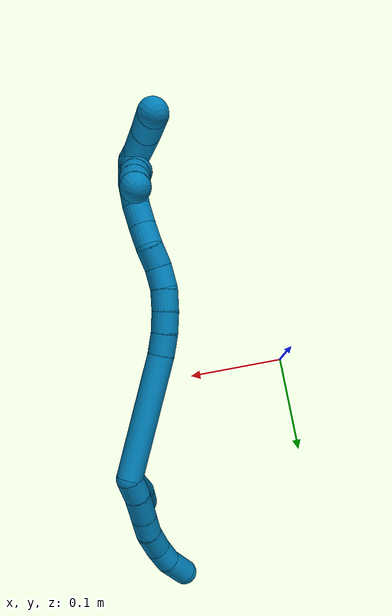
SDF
<sdf version="1.7">
 <world name="default">
  <model name="9">
   <static>0</static>
   <link name="9">
    <collision name="collision-cylinder-e_1_2_8">
     <pose>0.009522 -0.004324 -0.003803 2.29216 1.02687 1.78965</pose>
     <geometry><cylinder><radius>0.0125</radius><length>0.022256</length></cylinder></geometry>
     <surface>
      <friction><ode><mu>1.16</mu><mu2>1.16</mu2><slip1>0</slip1><slip2>0</slip2></ode></friction>
      <contact><ode><kp>1e+06</kp><kd>1</kd><max_vel>0</max_vel><min_depth>0.001</min_depth></ode></contact>
     </surface>
    </collision>
    <visual name="visual-cylinder-e_1_2_8">
     <pose>0.009522 -0.004324 -0.003803 2.29216 1.02687 1.78965</pose>
     <geometry><cylinder><radius>0.0125</radius><length>0.022256</length></cylinder></geometry>
     <material><ambient>0 0.490196 0.709804 1</ambient></material>
    </visual>
    <collision name="collision-cylinder-e_2_8_9">
     <pose>0.032115 -0.013404 -0.01123 2.22196 1.1418 1.82788</pose>
     <geometry><cylinder><radius>0.0125</radius><length>0.028745</length></cylinder></geometry>
     <surface>
      <friction><ode><mu>1.16</mu><mu2>1.16</mu2><slip1>0</slip1><slip2>0</slip2></ode></friction>
      <contact><ode><kp>1e+06</kp><kd>1</kd><max_vel>0</max_vel><min_depth>0.001</min_depth></ode></contact>
     </surface>
    </collision>
    <visual name="visual-cylinder-e_2_8_9">
     <pose>0.032115 -0.013404 -0.01123 2.22196 1.1418 1.82788</pose>
     <geometry><cylinder><radius>0.0125</radius><length>0.028745</length></cylinder></geometry>
     <material><ambient>0 0.490196 0.709804 1</ambient></material>
    </visual>
    <collision name="collision-cylinder-e_3_9_10">
     <pose>0.055099 -0.021586 -0.018016 2.31596 1.13115 1.9336</pose>
     <geometry><cylinder><radius>0.0125</radius><length>0.021913</length></cylinder></geometry>
     <surface>
      <friction><ode><mu>1.16</mu><mu2>1.16</mu2><slip1>0</slip1><slip2>0</slip2></ode></friction>
      <contact><ode><kp>1e+06</kp><kd>1</kd><max_vel>0</max_vel><min_depth>0.001</min_depth></ode></contact>
     </surface>
    </collision>
    <visual name="visual-cylinder-e_3_9_10">
     <pose>0.055099 -0.021586 -0.018016 2.31596 1.13115 1.9336</pose>
     <geometry><cylinder><radius>0.0125</radius><length>0.021913</length></cylinder></geometry>
     <material><ambient>0 0.490196 0.709804 1</ambient></material>
    </visual>
    <collision name="collision-cylinder-e_4_10_11">
     <pose>0.076264 -0.031543 -0.024473 2.03811 0.994356 1.44515</pose>
     <geometry><cylinder><radius>0.0125</radius><length>0.026838</length></cylinder></geometry>
     <surface>
      <friction><ode><mu>1.16</mu><mu2>1.16</mu2><slip1>0</slip1><slip2>0</slip2></ode></friction>
      <contact><ode><kp>1e+06</kp><kd>1</kd><max_vel>0</max_vel><min_depth>0.001</min_depth></ode></contact>
     </surface>
    </collision>
    <visual name="visual-cylinder-e_4_10_11">
     <pose>0.076264 -0.031543 -0.024473 2.03811 0.994356 1.44515</pose>
     <geometry><cylinder><radius>0.0125</radius><length>0.026838</length></cylinder></geometry>
     <material><ambient>0 0.490196 0.709804 1</ambient></material>
    </visual>
    <collision name="collision-cylinder-e_5_11_12">
     <pose>0.095278 -0.043693 -0.032146 2.23268 0.82827 1.46529</pose>
     <geometry><cylinder><radius>0.0125</radius><length>0.021073</length></cylinder></geometry>
     <surface>
      <friction><ode><mu>1.16</mu><mu2>1.16</mu2><slip1>0</slip1><slip2>0</slip2></ode></friction>
      <contact><ode><kp>1e+06</kp><kd>1</kd><max_vel>0</max_vel><min_depth>0.001</min_depth></ode></contact>
     </surface>
    </collision>
    <visual name="visual-cylinder-e_5_11_12">
     <pose>0.095278 -0.043693 -0.032146 2.23268 0.82827 1.46529</pose>
     <geometry><cylinder><radius>0.0125</radius><length>0.021073</length></cylinder></geometry>
     <material><ambient>0 0.490196 0.709804 1</ambient></material>
    </visual>
    <collision name="collision-cylinder-e_6_12_6">
     <pose>0.112266 -0.059698 -0.040978 1.97586 0.684671 0.99111</pose>
     <geometry><cylinder><radius>0.0125</radius><length>0.029174</length></cylinder></geometry>
     <surface>
      <friction><ode><mu>1.16</mu><mu2>1.16</mu2><slip1>0</slip1><slip2>0</slip2></ode></friction>
      <contact><ode><kp>1e+06</kp><kd>1</kd><max_vel>0</max_vel><min_depth>0.001</min_depth></ode></contact>
     </surface>
    </collision>
    <visual name="visual-cylinder-e_6_12_6">
     <pose>0.112266 -0.059698 -0.040978 1.97586 0.684671 0.99111</pose>
     <geometry><cylinder><radius>0.0125</radius><length>0.029174</length></cylinder></geometry>
     <material><ambient>0 0.490196 0.709804 1</ambient></material>
    </visual>
    <collision name="collision-cylinder-e_1_2_13">
     <pose>0.025386 -0.018259 0.009767 1.07962 0.886573 0.554333</pose>
     <geometry><cylinder><radius>0.0125</radius><length>0.065521</length></cylinder></geometry>
     <surface>
      <friction><ode><mu>1.16</mu><mu2>1.16</mu2><slip1>0</slip1><slip2>0</slip2></ode></friction>
      <contact><ode><kp>1e+06</kp><kd>1</kd><max_vel>0</max_vel><min_depth>0.001</min_depth></ode></contact>
     </surface>
    </collision>
    <visual name="visual-cylinder-e_1_2_13">
     <pose>0.025386 -0.018259 0.009767 1.07962 0.886573 0.554333</pose>
     <geometry><cylinder><radius>0.0125</radius><length>0.065521</length></cylinder></geometry>
     <material><ambient>0 0.490196 0.709804 1</ambient></material>
    </visual>
    <collision name="collision-cylinder-e_2_13_5">
     <pose>0.065797 -0.044237 0.022982 1.15067 1.05822 0.724909</pose>
     <geometry><cylinder><radius>0.0125</radius><length>0.034479</length></cylinder></geometry>
     <surface>
      <friction><ode><mu>1.16</mu><mu2>1.16</mu2><slip1>0</slip1><slip2>0</slip2></ode></friction>
      <contact><ode><kp>1e+06</kp><kd>1</kd><max_vel>0</max_vel><min_depth>0.001</min_depth></ode></contact>
     </surface>
    </collision>
    <visual name="visual-cylinder-e_2_13_5">
     <pose>0.065797 -0.044237 0.022982 1.15067 1.05822 0.724909</pose>
     <geometry><cylinder><radius>0.0125</radius><length>0.034479</length></cylinder></geometry>
     <material><ambient>0 0.490196 0.709804 1</ambient></material>
    </visual>
    <collision name="collision-cylinder-e_1_2_14">
     <pose>-0.049351 -0.019671 0.026308 0.642042 -0.983514 -0.352533</pose>
     <geometry><cylinder><radius>0.0125</radius><length>0.118569</length></cylinder></geometry>
     <surface>
      <friction><ode><mu>1.16</mu><mu2>1.16</mu2><slip1>0</slip1><slip2>0</slip2></ode></friction>
      <contact><ode><kp>1e+06</kp><kd>1</kd><max_vel>0</max_vel><min_depth>0.001</min_depth></ode></contact>
     </surface>
    </collision>
    <visual name="visual-cylinder-e_1_2_14">
     <pose>-0.049351 -0.019671 0.026308 0.642042 -0.983514 -0.352533</pose>
     <geometry><cylinder><radius>0.0125</radius><length>0.118569</length></cylinder></geometry>
     <material><ambient>0 0.490196 0.709804 1</ambient></material>
    </visual>
    <collision name="collision-cylinder-e_2_14_15">
     <pose>-0.107719 -0.041496 0.057117 0.44637 -1.06546 -0.266053</pose>
     <geometry><cylinder><radius>0.0125</radius><length>0.020609</length></cylinder></geometry>
     <surface>
      <friction><ode><mu>1.16</mu><mu2>1.16</mu2><slip1>0</slip1><slip2>0</slip2></ode></friction>
      <contact><ode><kp>1e+06</kp><kd>1</kd><max_vel>0</max_vel><min_depth>0.001</min_depth></ode></contact>
     </surface>
    </collision>
    <visual name="visual-cylinder-e_2_14_15">
     <pose>-0.107719 -0.041496 0.057117 0.44637 -1.06546 -0.266053</pose>
     <geometry><cylinder><radius>0.0125</radius><length>0.020609</length></cylinder></geometry>
     <material><ambient>0 0.490196 0.709804 1</ambient></material>
    </visual>
    <collision name="collision-cylinder-e_3_15_16">
     <pose>-0.125385 -0.044851 0.066781 0.228534 -1.0208 -0.128337</pose>
     <geometry><cylinder><radius>0.0125</radius><length>0.020289</length></cylinder></geometry>
     <surface>
      <friction><ode><mu>1.16</mu><mu2>1.16</mu2><slip1>0</slip1><slip2>0</slip2></ode></friction>
      <contact><ode><kp>1e+06</kp><kd>1</kd><max_vel>0</max_vel><min_depth>0.001</min_depth></ode></contact>
     </surface>
    </collision>
    <visual name="visual-cylinder-e_3_15_16">
     <pose>-0.125385 -0.044851 0.066781 0.228534 -1.0208 -0.128337</pose>
     <geometry><cylinder><radius>0.0125</radius><length>0.020289</length></cylinder></geometry>
     <material><ambient>0 0.490196 0.709804 1</ambient></material>
    </visual>
    <collision name="collision-cylinder-e_4_16_17">
     <pose>-0.142258 -0.046613 0.077742 0.096399 -0.954659 -0.049888</pose>
     <geometry><cylinder><radius>0.0125</radius><length>0.020156</length></cylinder></geometry>
     <surface>
      <friction><ode><mu>1.16</mu><mu2>1.16</mu2><slip1>0</slip1><slip2>0</slip2></ode></friction>
      <contact><ode><kp>1e+06</kp><kd>1</kd><max_vel>0</max_vel><min_depth>0.001</min_depth></ode></contact>
     </surface>
    </collision>
    <visual name="visual-cylinder-e_4_16_17">
     <pose>-0.142258 -0.046613 0.077742 0.096399 -0.954659 -0.049888</pose>
     <geometry><cylinder><radius>0.0125</radius><length>0.020156</length></cylinder></geometry>
     <material><ambient>0 0.490196 0.709804 1</ambient></material>
    </visual>
    <collision name="collision-cylinder-e_5_17_18">
     <pose>-0.157622 -0.046318 0.090681 -0.119176 -0.781616 0.049149</pose>
     <geometry><cylinder><radius>0.0125</radius><length>0.020269</length></cylinder></geometry>
     <surface>
      <friction><ode><mu>1.16</mu><mu2>1.16</mu2><slip1>0</slip1><slip2>0</slip2></ode></friction>
      <contact><ode><kp>1e+06</kp><kd>1</kd><max_vel>0</max_vel><min_depth>0.001</min_depth></ode></contact>
     </surface>
    </collision>
    <visual name="visual-cylinder-e_5_17_18">
     <pose>-0.157622 -0.046318 0.090681 -0.119176 -0.781616 0.049149</pose>
     <geometry><cylinder><radius>0.0125</radius><length>0.020269</length></cylinder></geometry>
     <material><ambient>0 0.490196 0.709804 1</ambient></material>
    </visual>
    <collision name="collision-cylinder-e_6_18_19">
     <pose>-0.17209 -0.04236 0.10396 -0.468111 -0.817269 0.205752</pose>
     <geometry><cylinder><radius>0.0125</radius><length>0.020099</length></cylinder></geometry>
     <surface>
      <friction><ode><mu>1.16</mu><mu2>1.16</mu2><slip1>0</slip1><slip2>0</slip2></ode></friction>
      <contact><ode><kp>1e+06</kp><kd>1</kd><max_vel>0</max_vel><min_depth>0.001</min_depth></ode></contact>
     </surface>
    </collision>
    <visual name="visual-cylinder-e_6_18_19">
     <pose>-0.17209 -0.04236 0.10396 -0.468111 -0.817269 0.205752</pose>
     <geometry><cylinder><radius>0.0125</radius><length>0.020099</length></cylinder></geometry>
     <material><ambient>0 0.490196 0.709804 1</ambient></material>
    </visual>
    <collision name="collision-cylinder-e_7_19_20">
     <pose>-0.185354 -0.038614 0.118122 -0.080093 -0.635273 0.026345</pose>
     <geometry><cylinder><radius>0.0125</radius><length>0.020006</length></cylinder></geometry>
     <surface>
      <friction><ode><mu>1.16</mu><mu2>1.16</mu2><slip1>0</slip1><slip2>0</slip2></ode></friction>
      <contact><ode><kp>1e+06</kp><kd>1</kd><max_vel>0</max_vel><min_depth>0.001</min_depth></ode></contact>
     </surface>
    </collision>
    <visual name="visual-cylinder-e_7_19_20">
     <pose>-0.185354 -0.038614 0.118122 -0.080093 -0.635273 0.026345</pose>
     <geometry><cylinder><radius>0.0125</radius><length>0.020006</length></cylinder></geometry>
     <material><ambient>0 0.490196 0.709804 1</ambient></material>
    </visual>
    <collision name="collision-cylinder-e_8_20_21">
     <pose>-0.1978 -0.037254 0.133707 -0.094363 -0.708745 0.034936</pose>
     <geometry><cylinder><radius>0.0125</radius><length>0.020002</length></cylinder></geometry>
     <surface>
      <friction><ode><mu>1.16</mu><mu2>1.16</mu2><slip1>0</slip1><slip2>0</slip2></ode></friction>
      <contact><ode><kp>1e+06</kp><kd>1</kd><max_vel>0</max_vel><min_depth>0.001</min_depth></ode></contact>
     </surface>
    </collision>
    <visual name="visual-cylinder-e_8_20_21">
     <pose>-0.1978 -0.037254 0.133707 -0.094363 -0.708745 0.034936</pose>
     <geometry><cylinder><radius>0.0125</radius><length>0.020002</length></cylinder></geometry>
     <material><ambient>0 0.490196 0.709804 1</ambient></material>
    </visual>
    <collision name="collision-cylinder-e_9_21_22">
     <pose>-0.212079 -0.035955 0.147534 -0.092881 -0.889851 0.044311</pose>
     <geometry><cylinder><radius>0.0125</radius><length>0.02</length></cylinder></geometry>
     <surface>
      <friction><ode><mu>1.16</mu><mu2>1.16</mu2><slip1>0</slip1><slip2>0</slip2></ode></friction>
      <contact><ode><kp>1e+06</kp><kd>1</kd><max_vel>0</max_vel><min_depth>0.001</min_depth></ode></contact>
     </surface>
    </collision>
    <visual name="visual-cylinder-e_9_21_22">
     <pose>-0.212079 -0.035955 0.147534 -0.092881 -0.889851 0.044311</pose>
     <geometry><cylinder><radius>0.0125</radius><length>0.02</length></cylinder></geometry>
     <material><ambient>0 0.490196 0.709804 1</ambient></material>
    </visual>
    <collision name="collision-cylinder-e_10_22_1">
     <pose>-0.227379 -0.037163 0.160133 0.275867 -0.852641 -0.125926</pose>
     <geometry><cylinder><radius>0.0125</radius><length>0.02</length></cylinder></geometry>
     <surface>
      <friction><ode><mu>1.16</mu><mu2>1.16</mu2><slip1>0</slip1><slip2>0</slip2></ode></friction>
      <contact><ode><kp>1e+06</kp><kd>1</kd><max_vel>0</max_vel><min_depth>0.001</min_depth></ode></contact>
     </surface>
    </collision>
    <visual name="visual-cylinder-e_10_22_1">
     <pose>-0.227379 -0.037163 0.160133 0.275867 -0.852641 -0.125926</pose>
     <geometry><cylinder><radius>0.0125</radius><length>0.02</length></cylinder></geometry>
     <material><ambient>0 0.490196 0.709804 1</ambient></material>
    </visual>
    <collision name="collision-cylinder-e_1_1_23">
     <pose>-0.23554 -0.034828 0.157378 -2.71519 -0.063063 0.289357</pose>
     <geometry><cylinder><radius>0.0125</radius><length>0.02</length></cylinder></geometry>
     <surface>
      <friction><ode><mu>1.16</mu><mu2>1.16</mu2><slip1>0</slip1><slip2>0</slip2></ode></friction>
      <contact><ode><kp>1e+06</kp><kd>1</kd><max_vel>0</max_vel><min_depth>0.001</min_depth></ode></contact>
     </surface>
    </collision>
    <visual name="visual-cylinder-e_1_1_23">
     <pose>-0.23554 -0.034828 0.157378 -2.71519 -0.063063 0.289357</pose>
     <geometry><cylinder><radius>0.0125</radius><length>0.02</length></cylinder></geometry>
     <material><ambient>0 0.490196 0.709804 1</ambient></material>
    </visual>
    <collision name="collision-cylinder-e_2_23_24">
     <pose>-0.23887 -0.027105 0.139359 -2.75888 -0.273437 1.23504</pose>
     <geometry><cylinder><radius>0.0125</radius><length>0.02</length></cylinder></geometry>
     <surface>
      <friction><ode><mu>1.16</mu><mu2>1.16</mu2><slip1>0</slip1><slip2>0</slip2></ode></friction>
      <contact><ode><kp>1e+06</kp><kd>1</kd><max_vel>0</max_vel><min_depth>0.001</min_depth></ode></contact>
     </surface>
    </collision>
    <visual name="visual-cylinder-e_2_23_24">
     <pose>-0.23887 -0.027105 0.139359 -2.75888 -0.273437 1.23504</pose>
     <geometry><cylinder><radius>0.0125</radius><length>0.02</length></cylinder></geometry>
     <material><ambient>0 0.490196 0.709804 1</ambient></material>
    </visual>
    <collision name="collision-cylinder-e_3_24_25">
     <pose>-0.243853 -0.017398 0.122848 -2.46309 -0.230228 0.633246</pose>
     <geometry><cylinder><radius>0.0125</radius><length>0.02</length></cylinder></geometry>
     <surface>
      <friction><ode><mu>1.16</mu><mu2>1.16</mu2><slip1>0</slip1><slip2>0</slip2></ode></friction>
      <contact><ode><kp>1e+06</kp><kd>1</kd><max_vel>0</max_vel><min_depth>0.001</min_depth></ode></contact>
     </surface>
    </collision>
    <visual name="visual-cylinder-e_3_24_25">
     <pose>-0.243853 -0.017398 0.122848 -2.46309 -0.230228 0.633246</pose>
     <geometry><cylinder><radius>0.0125</radius><length>0.02</length></cylinder></geometry>
     <material><ambient>0 0.490196 0.709804 1</ambient></material>
    </visual>
    <collision name="collision-cylinder-e_4_25_26">
     <pose>-0.247544 -0.006094 0.106839 -2.58938 -0.141383 0.489781</pose>
     <geometry><cylinder><radius>0.0125</radius><length>0.02</length></cylinder></geometry>
     <surface>
      <friction><ode><mu>1.16</mu><mu2>1.16</mu2><slip1>0</slip1><slip2>0</slip2></ode></friction>
      <contact><ode><kp>1e+06</kp><kd>1</kd><max_vel>0</max_vel><min_depth>0.001</min_depth></ode></contact>
     </surface>
    </collision>
    <visual name="visual-cylinder-e_4_25_26">
     <pose>-0.247544 -0.006094 0.106839 -2.58938 -0.141383 0.489781</pose>
     <geometry><cylinder><radius>0.0125</radius><length>0.02</length></cylinder></geometry>
     <material><ambient>0 0.490196 0.709804 1</ambient></material>
    </visual>
    <collision name="collision-cylinder-e_5_26_4">
     <pose>-0.250031 0.003792 0.089646 -2.65001 -0.107972 0.424338</pose>
     <geometry><cylinder><radius>0.0125</radius><length>0.02</length></cylinder></geometry>
     <surface>
      <friction><ode><mu>1.16</mu><mu2>1.16</mu2><slip1>0</slip1><slip2>0</slip2></ode></friction>
      <contact><ode><kp>1e+06</kp><kd>1</kd><max_vel>0</max_vel><min_depth>0.001</min_depth></ode></contact>
     </surface>
    </collision>
    <visual name="visual-cylinder-e_5_26_4">
     <pose>-0.250031 0.003792 0.089646 -2.65001 -0.107972 0.424338</pose>
     <geometry><cylinder><radius>0.0125</radius><length>0.02</length></cylinder></geometry>
     <material><ambient>0 0.490196 0.709804 1</ambient></material>
    </visual>
    <collision name="collision-cylinder-e_1_1_27">
     <pose>-0.242304 -0.036525 0.159855 -2.78918 -0.809835 2.35413</pose>
     <geometry><cylinder><radius>0.0125</radius><length>0.020421</length></cylinder></geometry>
     <surface>
      <friction><ode><mu>1.16</mu><mu2>1.16</mu2><slip1>0</slip1><slip2>0</slip2></ode></friction>
      <contact><ode><kp>1e+06</kp><kd>1</kd><max_vel>0</max_vel><min_depth>0.001</min_depth></ode></contact>
     </surface>
    </collision>
    <visual name="visual-cylinder-e_1_1_27">
     <pose>-0.242304 -0.036525 0.159855 -2.78918 -0.809835 2.35413</pose>
     <geometry><cylinder><radius>0.0125</radius><length>0.020421</length></cylinder></geometry>
     <material><ambient>0 0.490196 0.709804 1</ambient></material>
    </visual>
    <collision name="collision-cylinder-e_2_27_28">
     <pose>-0.265232 -0.025591 0.137124 -2.65624 -0.705785 1.95802</pose>
     <geometry><cylinder><radius>0.0125</radius><length>0.047899</length></cylinder></geometry>
     <surface>
      <friction><ode><mu>1.16</mu><mu2>1.16</mu2><slip1>0</slip1><slip2>0</slip2></ode></friction>
      <contact><ode><kp>1e+06</kp><kd>1</kd><max_vel>0</max_vel><min_depth>0.001</min_depth></ode></contact>
     </surface>
    </collision>
    <visual name="visual-cylinder-e_2_27_28">
     <pose>-0.265232 -0.025591 0.137124 -2.65624 -0.705785 1.95802</pose>
     <geometry><cylinder><radius>0.0125</radius><length>0.047899</length></cylinder></geometry>
     <material><ambient>0 0.490196 0.709804 1</ambient></material>
    </visual>
    <collision name="collision-cylinder-e_3_28_3">
     <pose>-0.291413 -0.011433 0.110726 -2.63852 -0.737048 1.96725</pose>
     <geometry><cylinder><radius>0.0125</radius><length>0.03168</length></cylinder></geometry>
     <surface>
      <friction><ode><mu>1.16</mu><mu2>1.16</mu2><slip1>0</slip1><slip2>0</slip2></ode></friction>
      <contact><ode><kp>1e+06</kp><kd>1</kd><max_vel>0</max_vel><min_depth>0.001</min_depth></ode></contact>
     </surface>
    </collision>
    <visual name="visual-cylinder-e_3_28_3">
     <pose>-0.291413 -0.011433 0.110726 -2.63852 -0.737048 1.96725</pose>
     <geometry><cylinder><radius>0.0125</radius><length>0.03168</length></cylinder></geometry>
     <material><ambient>0 0.490196 0.709804 1</ambient></material>
    </visual>
    <collision name="collision-sphere-3">
     <pose>-0.302059 -0.005778 0.10045 0 -0 0</pose>
     <geometry><sphere><radius>0.0125</radius></sphere></geometry>
     <surface>
      <friction><ode><mu>1.16</mu><mu2>1.16</mu2><slip1>0</slip1><slip2>0</slip2></ode></friction>
      <contact><ode><kp>1e+06</kp><kd>1</kd><max_vel>0</max_vel><min_depth>0.001</min_depth></ode></contact>
     </surface>
    </collision>
    <visual name="visual-sphere-3">
     <pose>-0.302059 -0.005778 0.10045 0 -0 0</pose>
     <geometry><sphere><radius>0.0125</radius></sphere></geometry>
     <material><ambient>0 0.490196 0.709804 1</ambient></material>
    </visual>
    <collision name="collision-sphere-28">
     <pose>-0.280767 -0.017087 0.121001 0 -0 0</pose>
     <geometry><sphere><radius>0.0125</radius></sphere></geometry>
     <surface>
      <friction><ode><mu>1.16</mu><mu2>1.16</mu2><slip1>0</slip1><slip2>0</slip2></ode></friction>
      <contact><ode><kp>1e+06</kp><kd>1</kd><max_vel>0</max_vel><min_depth>0.001</min_depth></ode></contact>
     </surface>
    </collision>
    <visual name="visual-sphere-28">
     <pose>-0.280767 -0.017087 0.121001 0 -0 0</pose>
     <geometry><sphere><radius>0.0125</radius></sphere></geometry>
     <material><ambient>0 0.490196 0.709804 1</ambient></material>
    </visual>
    <collision name="collision-sphere-27">
     <pose>-0.249698 -0.034095 0.153247 0 -0 0</pose>
     <geometry><sphere><radius>0.0125</radius></sphere></geometry>
     <surface>
      <friction><ode><mu>1.16</mu><mu2>1.16</mu2><slip1>0</slip1><slip2>0</slip2></ode></friction>
      <contact><ode><kp>1e+06</kp><kd>1</kd><max_vel>0</max_vel><min_depth>0.001</min_depth></ode></contact>
     </surface>
    </collision>
    <visual name="visual-sphere-27">
     <pose>-0.249698 -0.034095 0.153247 0 -0 0</pose>
     <geometry><sphere><radius>0.0125</radius></sphere></geometry>
     <material><ambient>0 0.490196 0.709804 1</ambient></material>
    </visual>
    <collision name="collision-sphere-4">
     <pose>-0.251108 0.008485 0.080881 0 -0 0</pose>
     <geometry><sphere><radius>0.0125</radius></sphere></geometry>
     <surface>
      <friction><ode><mu>1.16</mu><mu2>1.16</mu2><slip1>0</slip1><slip2>0</slip2></ode></friction>
      <contact><ode><kp>1e+06</kp><kd>1</kd><max_vel>0</max_vel><min_depth>0.001</min_depth></ode></contact>
     </surface>
    </collision>
    <visual name="visual-sphere-4">
     <pose>-0.251108 0.008485 0.080881 0 -0 0</pose>
     <geometry><sphere><radius>0.0125</radius></sphere></geometry>
     <material><ambient>0 0.490196 0.709804 1</ambient></material>
    </visual>
    <collision name="collision-sphere-26">
     <pose>-0.248953 -0.000901 0.098411 0 -0 0</pose>
     <geometry><sphere><radius>0.0125</radius></sphere></geometry>
     <surface>
      <friction><ode><mu>1.16</mu><mu2>1.16</mu2><slip1>0</slip1><slip2>0</slip2></ode></friction>
      <contact><ode><kp>1e+06</kp><kd>1</kd><max_vel>0</max_vel><min_depth>0.001</min_depth></ode></contact>
     </surface>
    </collision>
    <visual name="visual-sphere-26">
     <pose>-0.248953 -0.000901 0.098411 0 -0 0</pose>
     <geometry><sphere><radius>0.0125</radius></sphere></geometry>
     <material><ambient>0 0.490196 0.709804 1</ambient></material>
    </visual>
    <collision name="collision-sphere-25">
     <pose>-0.246135 -0.011288 0.115268 0 -0 0</pose>
     <geometry><sphere><radius>0.0125</radius></sphere></geometry>
     <surface>
      <friction><ode><mu>1.16</mu><mu2>1.16</mu2><slip1>0</slip1><slip2>0</slip2></ode></friction>
      <contact><ode><kp>1e+06</kp><kd>1</kd><max_vel>0</max_vel><min_depth>0.001</min_depth></ode></contact>
     </surface>
    </collision>
    <visual name="visual-sphere-25">
     <pose>-0.246135 -0.011288 0.115268 0 -0 0</pose>
     <geometry><sphere><radius>0.0125</radius></sphere></geometry>
     <material><ambient>0 0.490196 0.709804 1</ambient></material>
    </visual>
    <collision name="collision-sphere-24">
     <pose>-0.241571 -0.023509 0.130427 0 -0 0</pose>
     <geometry><sphere><radius>0.0125</radius></sphere></geometry>
     <surface>
      <friction><ode><mu>1.16</mu><mu2>1.16</mu2><slip1>0</slip1><slip2>0</slip2></ode></friction>
      <contact><ode><kp>1e+06</kp><kd>1</kd><max_vel>0</max_vel><min_depth>0.001</min_depth></ode></contact>
     </surface>
    </collision>
    <visual name="visual-sphere-24">
     <pose>-0.241571 -0.023509 0.130427 0 -0 0</pose>
     <geometry><sphere><radius>0.0125</radius></sphere></geometry>
     <material><ambient>0 0.490196 0.709804 1</ambient></material>
    </visual>
    <collision name="collision-sphere-23">
     <pose>-0.23617 -0.0307 0.148291 0 -0 0</pose>
     <geometry><sphere><radius>0.0125</radius></sphere></geometry>
     <surface>
      <friction><ode><mu>1.16</mu><mu2>1.16</mu2><slip1>0</slip1><slip2>0</slip2></ode></friction>
      <contact><ode><kp>1e+06</kp><kd>1</kd><max_vel>0</max_vel><min_depth>0.001</min_depth></ode></contact>
     </surface>
    </collision>
    <visual name="visual-sphere-23">
     <pose>-0.23617 -0.0307 0.148291 0 -0 0</pose>
     <geometry><sphere><radius>0.0125</radius></sphere></geometry>
     <material><ambient>0 0.490196 0.709804 1</ambient></material>
    </visual>
    <collision name="collision-sphere-1">
     <pose>-0.234909 -0.038956 0.166464 0 -0 0</pose>
     <geometry><sphere><radius>0.0125</radius></sphere></geometry>
     <surface>
      <friction><ode><mu>1.16</mu><mu2>1.16</mu2><slip1>0</slip1><slip2>0</slip2></ode></friction>
      <contact><ode><kp>1e+06</kp><kd>1</kd><max_vel>0</max_vel><min_depth>0.001</min_depth></ode></contact>
     </surface>
    </collision>
    <visual name="visual-sphere-1">
     <pose>-0.234909 -0.038956 0.166464 0 -0 0</pose>
     <geometry><sphere><radius>0.0125</radius></sphere></geometry>
     <material><ambient>0 0.490196 0.709804 1</ambient></material>
    </visual>
    <collision name="collision-sphere-22">
     <pose>-0.219849 -0.035371 0.153802 0 -0 0</pose>
     <geometry><sphere><radius>0.0125</radius></sphere></geometry>
     <surface>
      <friction><ode><mu>1.16</mu><mu2>1.16</mu2><slip1>0</slip1><slip2>0</slip2></ode></friction>
      <contact><ode><kp>1e+06</kp><kd>1</kd><max_vel>0</max_vel><min_depth>0.001</min_depth></ode></contact>
     </surface>
    </collision>
    <visual name="visual-sphere-22">
     <pose>-0.219849 -0.035371 0.153802 0 -0 0</pose>
     <geometry><sphere><radius>0.0125</radius></sphere></geometry>
     <material><ambient>0 0.490196 0.709804 1</ambient></material>
    </visual>
    <collision name="collision-sphere-21">
     <pose>-0.204309 -0.036539 0.141265 0 -0 0</pose>
     <geometry><sphere><radius>0.0125</radius></sphere></geometry>
     <surface>
      <friction><ode><mu>1.16</mu><mu2>1.16</mu2><slip1>0</slip1><slip2>0</slip2></ode></friction>
      <contact><ode><kp>1e+06</kp><kd>1</kd><max_vel>0</max_vel><min_depth>0.001</min_depth></ode></contact>
     </surface>
    </collision>
    <visual name="visual-sphere-21">
     <pose>-0.204309 -0.036539 0.141265 0 -0 0</pose>
     <geometry><sphere><radius>0.0125</radius></sphere></geometry>
     <material><ambient>0 0.490196 0.709804 1</ambient></material>
    </visual>
    <collision name="collision-sphere-12">
     <pose>0.103041 -0.049313 -0.036525 0 -0 0</pose>
     <geometry><sphere><radius>0.0125</radius></sphere></geometry>
     <surface>
      <friction><ode><mu>1.16</mu><mu2>1.16</mu2><slip1>0</slip1><slip2>0</slip2></ode></friction>
      <contact><ode><kp>1e+06</kp><kd>1</kd><max_vel>0</max_vel><min_depth>0.001</min_depth></ode></contact>
     </surface>
    </collision>
    <visual name="visual-sphere-12">
     <pose>0.103041 -0.049313 -0.036525 0 -0 0</pose>
     <geometry><sphere><radius>0.0125</radius></sphere></geometry>
     <material><ambient>0 0.490196 0.709804 1</ambient></material>
    </visual>
    <collision name="collision-sphere-11">
     <pose>0.087515 -0.038073 -0.027767 0 -0 0</pose>
     <geometry><sphere><radius>0.0125</radius></sphere></geometry>
     <surface>
      <friction><ode><mu>1.16</mu><mu2>1.16</mu2><slip1>0</slip1><slip2>0</slip2></ode></friction>
      <contact><ode><kp>1e+06</kp><kd>1</kd><max_vel>0</max_vel><min_depth>0.001</min_depth></ode></contact>
     </surface>
    </collision>
    <visual name="visual-sphere-11">
     <pose>0.087515 -0.038073 -0.027767 0 -0 0</pose>
     <geometry><sphere><radius>0.0125</radius></sphere></geometry>
     <material><ambient>0 0.490196 0.709804 1</ambient></material>
    </visual>
    <collision name="collision-sphere-10">
     <pose>0.065014 -0.025014 -0.021178 0 -0 0</pose>
     <geometry><sphere><radius>0.0125</radius></sphere></geometry>
     <surface>
      <friction><ode><mu>1.16</mu><mu2>1.16</mu2><slip1>0</slip1><slip2>0</slip2></ode></friction>
      <contact><ode><kp>1e+06</kp><kd>1</kd><max_vel>0</max_vel><min_depth>0.001</min_depth></ode></contact>
     </surface>
    </collision>
    <visual name="visual-sphere-10">
     <pose>0.065014 -0.025014 -0.021178 0 -0 0</pose>
     <geometry><sphere><radius>0.0125</radius></sphere></geometry>
     <material><ambient>0 0.490196 0.709804 1</ambient></material>
    </visual>
    <collision name="collision-sphere-9">
     <pose>0.045185 -0.018159 -0.014853 0 -0 0</pose>
     <geometry><sphere><radius>0.0125</radius></sphere></geometry>
     <surface>
      <friction><ode><mu>1.16</mu><mu2>1.16</mu2><slip1>0</slip1><slip2>0</slip2></ode></friction>
      <contact><ode><kp>1e+06</kp><kd>1</kd><max_vel>0</max_vel><min_depth>0.001</min_depth></ode></contact>
     </surface>
    </collision>
    <visual name="visual-sphere-9">
     <pose>0.045185 -0.018159 -0.014853 0 -0 0</pose>
     <geometry><sphere><radius>0.0125</radius></sphere></geometry>
     <material><ambient>0 0.490196 0.709804 1</ambient></material>
    </visual>
    <collision name="collision-sphere-2">
     <geometry><sphere><radius>0.0125</radius></sphere></geometry>
     <surface>
      <friction><ode><mu>1.16</mu><mu2>1.16</mu2><slip1>0</slip1><slip2>0</slip2></ode></friction>
      <contact><ode><kp>1e+06</kp><kd>1</kd><max_vel>0</max_vel><min_depth>0.001</min_depth></ode></contact>
     </surface>
    </collision>
    <visual name="visual-sphere-2">
     <geometry><sphere><radius>0.0125</radius></sphere></geometry>
     <material><ambient>0 0.490196 0.709804 1</ambient></material>
    </visual>
    <collision name="collision-sphere-19">
     <pose>-0.179418 -0.039258 0.110096 0 -0 0</pose>
     <geometry><sphere><radius>0.0125</radius></sphere></geometry>
     <surface>
      <friction><ode><mu>1.16</mu><mu2>1.16</mu2><slip1>0</slip1><slip2>0</slip2></ode></friction>
      <contact><ode><kp>1e+06</kp><kd>1</kd><max_vel>0</max_vel><min_depth>0.001</min_depth></ode></contact>
     </surface>
    </collision>
    <visual name="visual-sphere-19">
     <pose>-0.179418 -0.039258 0.110096 0 -0 0</pose>
     <geometry><sphere><radius>0.0125</radius></sphere></geometry>
     <material><ambient>0 0.490196 0.709804 1</ambient></material>
    </visual>
    <collision name="collision-sphere-8">
     <pose>0.019044 -0.008649 -0.007606 0 -0 0</pose>
     <geometry><sphere><radius>0.0125</radius></sphere></geometry>
     <surface>
      <friction><ode><mu>1.16</mu><mu2>1.16</mu2><slip1>0</slip1><slip2>0</slip2></ode></friction>
      <contact><ode><kp>1e+06</kp><kd>1</kd><max_vel>0</max_vel><min_depth>0.001</min_depth></ode></contact>
     </surface>
    </collision>
    <visual name="visual-sphere-8">
     <pose>0.019044 -0.008649 -0.007606 0 -0 0</pose>
     <geometry><sphere><radius>0.0125</radius></sphere></geometry>
     <material><ambient>0 0.490196 0.709804 1</ambient></material>
    </visual>
    <collision name="collision-sphere-6">
     <pose>0.121491 -0.070083 -0.045431 0 -0 0</pose>
     <geometry><sphere><radius>0.0125</radius></sphere></geometry>
     <surface>
      <friction><ode><mu>1.16</mu><mu2>1.16</mu2><slip1>0</slip1><slip2>0</slip2></ode></friction>
      <contact><ode><kp>1e+06</kp><kd>1</kd><max_vel>0</max_vel><min_depth>0.001</min_depth></ode></contact>
     </surface>
    </collision>
    <visual name="visual-sphere-6">
     <pose>0.121491 -0.070083 -0.045431 0 -0 0</pose>
     <geometry><sphere><radius>0.0125</radius></sphere></geometry>
     <material><ambient>0 0.490196 0.709804 1</ambient></material>
    </visual>
    <collision name="collision-sphere-13">
     <pose>0.050773 -0.036518 0.019533 0 -0 0</pose>
     <geometry><sphere><radius>0.0125</radius></sphere></geometry>
     <surface>
      <friction><ode><mu>1.16</mu><mu2>1.16</mu2><slip1>0</slip1><slip2>0</slip2></ode></friction>
      <contact><ode><kp>1e+06</kp><kd>1</kd><max_vel>0</max_vel><min_depth>0.001</min_depth></ode></contact>
     </surface>
    </collision>
    <visual name="visual-sphere-13">
     <pose>0.050773 -0.036518 0.019533 0 -0 0</pose>
     <geometry><sphere><radius>0.0125</radius></sphere></geometry>
     <material><ambient>0 0.490196 0.709804 1</ambient></material>
    </visual>
    <collision name="collision-sphere-5">
     <pose>0.080821 -0.051957 0.02643 0 -0 0</pose>
     <geometry><sphere><radius>0.0125</radius></sphere></geometry>
     <surface>
      <friction><ode><mu>1.16</mu><mu2>1.16</mu2><slip1>0</slip1><slip2>0</slip2></ode></friction>
      <contact><ode><kp>1e+06</kp><kd>1</kd><max_vel>0</max_vel><min_depth>0.001</min_depth></ode></contact>
     </surface>
    </collision>
    <visual name="visual-sphere-5">
     <pose>0.080821 -0.051957 0.02643 0 -0 0</pose>
     <geometry><sphere><radius>0.0125</radius></sphere></geometry>
     <material><ambient>0 0.490196 0.709804 1</ambient></material>
    </visual>
    <collision name="collision-sphere-14">
     <pose>-0.098703 -0.039343 0.052617 0 -0 0</pose>
     <geometry><sphere><radius>0.0125</radius></sphere></geometry>
     <surface>
      <friction><ode><mu>1.16</mu><mu2>1.16</mu2><slip1>0</slip1><slip2>0</slip2></ode></friction>
      <contact><ode><kp>1e+06</kp><kd>1</kd><max_vel>0</max_vel><min_depth>0.001</min_depth></ode></contact>
     </surface>
    </collision>
    <visual name="visual-sphere-14">
     <pose>-0.098703 -0.039343 0.052617 0 -0 0</pose>
     <geometry><sphere><radius>0.0125</radius></sphere></geometry>
     <material><ambient>0 0.490196 0.709804 1</ambient></material>
    </visual>
    <collision name="collision-sphere-15">
     <pose>-0.116736 -0.04365 0.061616 0 -0 0</pose>
     <geometry><sphere><radius>0.0125</radius></sphere></geometry>
     <surface>
      <friction><ode><mu>1.16</mu><mu2>1.16</mu2><slip1>0</slip1><slip2>0</slip2></ode></friction>
      <contact><ode><kp>1e+06</kp><kd>1</kd><max_vel>0</max_vel><min_depth>0.001</min_depth></ode></contact>
     </surface>
    </collision>
    <visual name="visual-sphere-15">
     <pose>-0.116736 -0.04365 0.061616 0 -0 0</pose>
     <geometry><sphere><radius>0.0125</radius></sphere></geometry>
     <material><ambient>0 0.490196 0.709804 1</ambient></material>
    </visual>
    <collision name="collision-sphere-16">
     <pose>-0.134033 -0.046052 0.071945 0 -0 0</pose>
     <geometry><sphere><radius>0.0125</radius></sphere></geometry>
     <surface>
      <friction><ode><mu>1.16</mu><mu2>1.16</mu2><slip1>0</slip1><slip2>0</slip2></ode></friction>
      <contact><ode><kp>1e+06</kp><kd>1</kd><max_vel>0</max_vel><min_depth>0.001</min_depth></ode></contact>
     </surface>
    </collision>
    <visual name="visual-sphere-16">
     <pose>-0.134033 -0.046052 0.071945 0 -0 0</pose>
     <geometry><sphere><radius>0.0125</radius></sphere></geometry>
     <material><ambient>0 0.490196 0.709804 1</ambient></material>
    </visual>
    <collision name="collision-sphere-17">
     <pose>-0.150483 -0.047173 0.083539 0 -0 0</pose>
     <geometry><sphere><radius>0.0125</radius></sphere></geometry>
     <surface>
      <friction><ode><mu>1.16</mu><mu2>1.16</mu2><slip1>0</slip1><slip2>0</slip2></ode></friction>
      <contact><ode><kp>1e+06</kp><kd>1</kd><max_vel>0</max_vel><min_depth>0.001</min_depth></ode></contact>
     </surface>
    </collision>
    <visual name="visual-sphere-17">
     <pose>-0.150483 -0.047173 0.083539 0 -0 0</pose>
     <geometry><sphere><radius>0.0125</radius></sphere></geometry>
     <material><ambient>0 0.490196 0.709804 1</ambient></material>
    </visual>
    <collision name="collision-sphere-18">
     <pose>-0.164761 -0.045463 0.097824 0 -0 0</pose>
     <geometry><sphere><radius>0.0125</radius></sphere></geometry>
     <surface>
      <friction><ode><mu>1.16</mu><mu2>1.16</mu2><slip1>0</slip1><slip2>0</slip2></ode></friction>
      <contact><ode><kp>1e+06</kp><kd>1</kd><max_vel>0</max_vel><min_depth>0.001</min_depth></ode></contact>
     </surface>
    </collision>
    <visual name="visual-sphere-18">
     <pose>-0.164761 -0.045463 0.097824 0 -0 0</pose>
     <geometry><sphere><radius>0.0125</radius></sphere></geometry>
     <material><ambient>0 0.490196 0.709804 1</ambient></material>
    </visual>
    <collision name="collision-sphere-20">
     <pose>-0.19129 -0.03797 0.126148 0 -0 0</pose>
     <geometry><sphere><radius>0.0125</radius></sphere></geometry>
     <surface>
      <friction><ode><mu>1.16</mu><mu2>1.16</mu2><slip1>0</slip1><slip2>0</slip2></ode></friction>
      <contact><ode><kp>1e+06</kp><kd>1</kd><max_vel>0</max_vel><min_depth>0.001</min_depth></ode></contact>
     </surface>
    </collision>
    <visual name="visual-sphere-20">
     <pose>-0.19129 -0.03797 0.126148 0 -0 0</pose>
     <geometry><sphere><radius>0.0125</radius></sphere></geometry>
     <material><ambient>0 0.490196 0.709804 1</ambient></material>
    </visual>
    <inertial>
     <pose>-0.098916 -0.027945 0.061465 0 -0 0</pose>
     <mass>0.75</mass>
     <inertia>
      <ixx>9.6e-05</ixx>
      <ixy>0</ixy>
      <ixz>0</ixz>
      <iyy>0.000183</iyy>
      <iyz>0</iyz>
      <izz>0.000167</izz>
     </inertia>
    </inertial>
   </link>
   <pose>0.173818 0.095056 0.107332 2.31178 0.714933 1.02413</pose>
  </model>
 </world>
</sdf>
